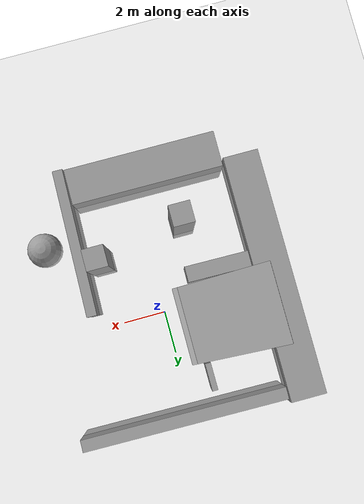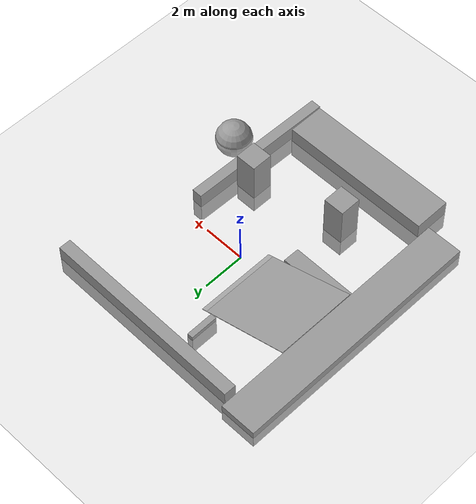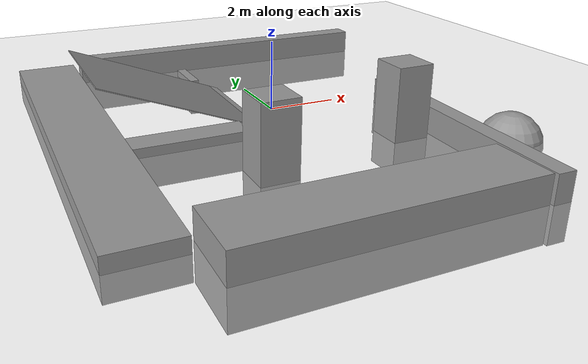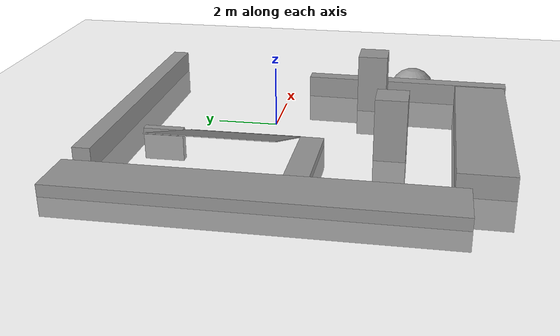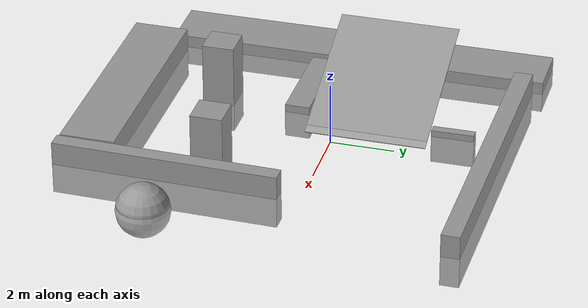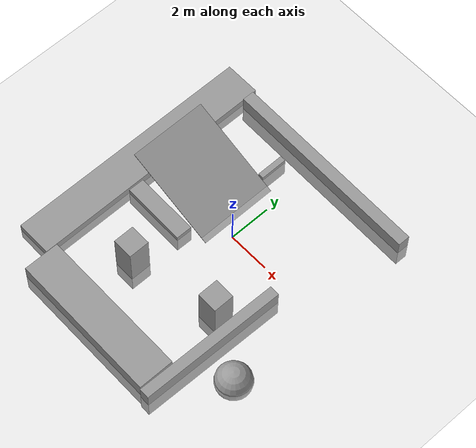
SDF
<?xml version="1.0" ?>
<sdf version="1.6">
  <world name="default">

    <!-- Lighting -->
    <light name="sun" type="directional">
      <cast_shadows>1</cast_shadows>
      <pose>0 0 10 0 -0 0</pose>
      <diffuse>0.8 0.8 0.8 1</diffuse>
      <specular>0.2 0.2 0.2 1</specular>
      <attenuation>
        <range>1000</range>
        <constant>0.9</constant>
        <linear>0.01</linear>
        <quadratic>0.001</quadratic>
      </attenuation>
      <direction>-0.5 0.1 -0.9</direction>
    </light>

    <!-- Ground plane -->
    <model name="ground_plane">
      <static>1</static>
      <link name="link">
        <collision name="collision">
          <geometry>
            <plane>
              <normal>0 0 1</normal>
              <size>100 100</size>
            </plane>
          </geometry>
          <surface>
            <contact>
              <collide_bitmask>65535</collide_bitmask>
              <ode/>
            </contact>
            <friction>
              <ode>
                <mu>100</mu>
                <mu2>50</mu2>
              </ode>
            </friction>
          </surface>
        </collision>
        <visual name="visual">
          <cast_shadows>0</cast_shadows>
          <geometry>
            <plane>
              <normal>0 0 1</normal>
              <size>100 100</size>
            </plane>
          </geometry>
          <material>
            <script>
              <uri>file://media/materials/scripts/gazebo.material</uri>
              <name>Gazebo/Grey</name>
            </script>
          </material>
        </visual>
      </link>
    </model>

    <!-- Physics parameters -->
    <physics type="ode">
      <max_step_size>0.001</max_step_size>
      <real_time_factor>1</real_time_factor>
      <real_time_update_rate>1000</real_time_update_rate>
    </physics>

    <!-- Scene settings -->
    <scene>
      <ambient>0.4 0.4 0.4 1</ambient>
      <background>0.7 0.7 0.7 1</background>
      <shadows>1</shadows>
    </scene>

    <!-- Environment -->
    <gravity>0 0 -9.8</gravity>
    <magnetic_field>6e-06 2.3e-05 -4.2e-05</magnetic_field>
    <atmosphere type="adiabatic"/>
    <wind/>
    <spherical_coordinates>
      <surface_model>EARTH_WGS84</surface_model>
      <latitude_deg>0</latitude_deg>
      <longitude_deg>0</longitude_deg>
      <elevation>0</elevation>
      <heading_deg>0</heading_deg>
    </spherical_coordinates>

    <!-- Your rampsmall model -->
    <model name='rampsmall'>
      <link name='link_0'>
        <inertial>
          <mass>3.57056e+06</mass>
          <inertia>
            <ixx>4.41918e+07</ixx>
            <ixy>0</ixy>
            <ixz>0</ixz>
            <iyy>1.76113e+06</iyy>
            <iyz>0</iyz>
            <izz>4.41966e+07</izz>
          </inertia>
          <pose>0 0 0 0 -0 0</pose>
        </inertial>
        <pose>-5.48954 -0.381079 -0.132793 0 -0 0</pose>
        <gravity>1</gravity>
        <self_collide>0</self_collide>
        <kinematic>0</kinematic>
        <enable_wind>0</enable_wind>
        <visual name='visual'>
          <pose>0 0 0 0 -0 0</pose>
          <geometry>
            <box>
              <size>1.72264 12.0652 1.01795</size>
            </box>
          </geometry>
          <material>
            <lighting>1</lighting>
            <script>
              <uri>file://media/materials/scripts/gazebo.material</uri>
              <name>Gazebo/Grey</name>
            </script>
            <shader type='pixel'>
              <normal_map>__default__</normal_map>
            </shader>
          </material>
          <transparency>0</transparency>
          <cast_shadows>1</cast_shadows>
        </visual>
        <collision name='collision'>
          <laser_retro>0</laser_retro>
          <max_contacts>10</max_contacts>
          <pose>0 0 0 0 -0 0</pose>
          <geometry>
            <box>
              <size>1.72264 12.0652 1.01795</size>
            </box>
          </geometry>
          <surface>
            <friction>
              <ode>
                <mu>1</mu>
                <mu2>1</mu2>
                <fdir1>0 0 0</fdir1>
                <slip1>0</slip1>
                <slip2>0</slip2>
              </ode>
              <torsional>
                <coefficient>1</coefficient>
                <patch_radius>0</patch_radius>
                <surface_radius>0</surface_radius>
                <use_patch_radius>1</use_patch_radius>
                <ode>
                  <slip>0</slip>
                </ode>
              </torsional>
            </friction>
            <bounce>
              <restitution_coefficient>0</restitution_coefficient>
              <threshold>1e+06</threshold>
            </bounce>
            <contact>
              <collide_without_contact>0</collide_without_contact>
              <collide_without_contact_bitmask>1</collide_without_contact_bitmask>
              <collide_bitmask>1</collide_bitmask>
              <ode>
                <soft_cfm>0</soft_cfm>
                <soft_erp>0.2</soft_erp>
                <kp>1e+13</kp>
                <kd>1</kd>
                <max_vel>0.01</max_vel>
                <min_depth>0</min_depth>
              </ode>
              <bullet>
                <split_impulse>1</split_impulse>
                <split_impulse_penetration_threshold>-0.01</split_impulse_penetration_threshold>
                <soft_cfm>0</soft_cfm>
                <soft_erp>0.2</soft_erp>
                <kp>1e+13</kp>
                <kd>1</kd>
              </bullet>
            </contact>
          </surface>
        </collision>
      </link>
      <link name='link_0_1'>
        <inertial>
          <mass>2.89336e+06</mass>
          <inertia>
            <ixx>2.2596e+06</ixx>
            <ixy>0</ixy>
            <ixz>0</ixz>
            <iyy>2.2596e+06</iyy>
            <iyz>0</iyz>
            <izz>482227</izz>
          </inertia>
          <pose>0 0 0 0 -0 0</pose>
        </inertial>
        <pose>-1.87261 -3.97972 0.534001 0 -0 0</pose>
        <gravity>1</gravity>
        <self_collide>0</self_collide>
        <kinematic>0</kinematic>
        <enable_wind>0</enable_wind>
        <visual name='visual'>
          <pose>0 0 0 0 -0 0</pose>
          <geometry>
            <box>
              <size>1 1 2.89336</size>
            </box>
          </geometry>
          <material>
            <lighting>1</lighting>
            <script>
              <uri>file://media/materials/scripts/gazebo.material</uri>
              <name>Gazebo/Grey</name>
            </script>
            <shader type='pixel'>
              <normal_map>__default__</normal_map>
            </shader>
          </material>
          <transparency>0</transparency>
          <cast_shadows>1</cast_shadows>
        </visual>
        <collision name='collision'>
          <laser_retro>0</laser_retro>
          <max_contacts>10</max_contacts>
          <pose>0 0 0 0 -0 0</pose>
          <geometry>
            <box>
              <size>1 1 2.89336</size>
            </box>
          </geometry>
          <surface>
            <friction>
              <ode>
                <mu>1</mu>
                <mu2>1</mu2>
                <fdir1>0 0 0</fdir1>
                <slip1>0</slip1>
                <slip2>0</slip2>
              </ode>
              <torsional>
                <coefficient>1</coefficient>
                <patch_radius>0</patch_radius>
                <surface_radius>0</surface_radius>
                <use_patch_radius>1</use_patch_radius>
                <ode>
                  <slip>0</slip>
                </ode>
              </torsional>
            </friction>
            <bounce>
              <restitution_coefficient>0</restitution_coefficient>
              <threshold>1e+06</threshold>
            </bounce>
            <contact>
              <collide_without_contact>0</collide_without_contact>
              <collide_without_contact_bitmask>1</collide_without_contact_bitmask>
              <collide_bitmask>1</collide_bitmask>
              <ode>
                <soft_cfm>0</soft_cfm>
                <soft_erp>0.2</soft_erp>
                <kp>1e+13</kp>
                <kd>1</kd>
                <max_vel>0.01</max_vel>
                <min_depth>0</min_depth>
              </ode>
              <bullet>
                <split_impulse>1</split_impulse>
                <split_impulse_penetration_threshold>-0.01</split_impulse_penetration_threshold>
                <soft_cfm>0</soft_cfm>
                <soft_erp>0.2</soft_erp>
                <kp>1e+13</kp>
                <kd>1</kd>
              </bullet>
            </contact>
          </surface>
        </collision>
      </link>
      <link name='link_0_1_clone'>
        <inertial>
          <mass>780854</mass>
          <inertia>
            <ixx>949630</ixx>
            <ixy>0</ixy>
            <ixz>0</ixz>
            <iyy>1.53383e+06</iyy>
            <iyz>0</iyz>
            <izz>2.48323e+06</izz>
          </inertia>
          <pose>0 0 0 0 -0 0</pose>
        </inertial>
        <pose>-2.88209 0.917359 0.745586 0 0.369399 0</pose>
        <gravity>1</gravity>
        <self_collide>1</self_collide>
        <kinematic>0</kinematic>
        <enable_wind>0</enable_wind>
        <visual name='visual'>
          <pose>0 0 0 0 -0 0</pose>
          <geometry>
            <box>
              <size>4.85487 3.81994 0.02678</size>
            </box>
          </geometry>
          <material>
            <lighting>1</lighting>
            <script>
              <uri>file://media/materials/scripts/gazebo.material</uri>
              <name>Gazebo/Grey</name>
            </script>
            <shader type='pixel'>
              <normal_map>__default__</normal_map>
            </shader>
            <ambient>0.3 0.3 0.3 1</ambient>
            <diffuse>0.7 0.7 0.7 1</diffuse>
            <specular>0.01 0.01 0.01 1</specular>
            <emissive>0 0 0 1</emissive>
          </material>
          <transparency>0</transparency>
          <cast_shadows>1</cast_shadows>
        </visual>
        <collision name='collision'>
          <laser_retro>0</laser_retro>
          <max_contacts>10</max_contacts>
          <pose>0 0 0 0 -0 0</pose>
          <geometry>
            <box>
              <size>4.85487 3.81994 0.026078</size>
            </box>
          </geometry>
          <surface>
            <friction>
              <ode>
                <mu>1</mu>
                <mu2>1</mu2>
                <fdir1>0 0 0</fdir1>
                <slip1>0</slip1>
                <slip2>0</slip2>
              </ode>
              <torsional>
                <coefficient>1</coefficient>
                <patch_radius>0</patch_radius>
                <surface_radius>0</surface_radius>
                <use_patch_radius>1</use_patch_radius>
                <ode>
                  <slip>0</slip>
                </ode>
              </torsional>
            </friction>
            <bounce>
              <restitution_coefficient>0</restitution_coefficient>
              <threshold>1e+06</threshold>
            </bounce>
            <contact>
              <collide_without_contact>0</collide_without_contact>
              <collide_without_contact_bitmask>1</collide_without_contact_bitmask>
              <collide_bitmask>1</collide_bitmask>
              <ode>
                <soft_cfm>0</soft_cfm>
                <soft_erp>0.2</soft_erp>
                <kp>1e+13</kp>
                <kd>1</kd>
                <max_vel>0.01</max_vel>
                <min_depth>0</min_depth>
              </ode>
              <bullet>
                <split_impulse>1</split_impulse>
                <split_impulse_penetration_threshold>-0.01</split_impulse_penetration_threshold>
                <soft_cfm>0</soft_cfm>
                <soft_erp>0.2</soft_erp>
                <kp>1e+13</kp>
                <kd>1</kd>
              </bullet>
            </contact>
          </surface>
        </collision>
      </link>
      <link name='link_0_1_clone_0'>
        <inertial>
          <mass>2.89336e+06</mass>
          <inertia>
            <ixx>2.2596e+06</ixx>
            <ixy>0</ixy>
            <ixz>0</ixz>
            <iyy>2.2596e+06</iyy>
            <iyz>0</iyz>
            <izz>482227</izz>
          </inertia>
          <pose>0 0 0 0 -0 0</pose>
        </inertial>
        <pose>2.31457 -3.08211 0.534005 0 -2e-06 -1.4e-05</pose>
        <gravity>1</gravity>
        <self_collide>0</self_collide>
        <kinematic>0</kinematic>
        <enable_wind>0</enable_wind>
        <visual name='visual'>
          <pose>0 0 0 0 -0 0</pose>
          <geometry>
            <box>
              <size>1 1 2.89336</size>
            </box>
          </geometry>
          <material>
            <lighting>1</lighting>
            <script>
              <uri>file://media/materials/scripts/gazebo.material</uri>
              <name>Gazebo/Grey</name>
            </script>
            <shader type='pixel'>
              <normal_map>__default__</normal_map>
            </shader>
          </material>
          <transparency>0</transparency>
          <cast_shadows>1</cast_shadows>
        </visual>
        <collision name='collision'>
          <laser_retro>0</laser_retro>
          <max_contacts>10</max_contacts>
          <pose>0 0 0 0 -0 0</pose>
          <geometry>
            <box>
              <size>1 1 2.89336</size>
            </box>
          </geometry>
          <surface>
            <friction>
              <ode>
                <mu>1</mu>
                <mu2>1</mu2>
                <fdir1>0 0 0</fdir1>
                <slip1>0</slip1>
                <slip2>0</slip2>
              </ode>
              <torsional>
                <coefficient>1</coefficient>
                <patch_radius>0</patch_radius>
                <surface_radius>0</surface_radius>
                <use_patch_radius>1</use_patch_radius>
                <ode>
                  <slip>0</slip>
                </ode>
              </torsional>
            </friction>
            <bounce>
              <restitution_coefficient>0</restitution_coefficient>
              <threshold>1e+06</threshold>
            </bounce>
            <contact>
              <collide_without_contact>0</collide_without_contact>
              <collide_without_contact_bitmask>1</collide_without_contact_bitmask>
              <collide_bitmask>1</collide_bitmask>
              <ode>
                <soft_cfm>0</soft_cfm>
                <soft_erp>0.2</soft_erp>
                <kp>1e+13</kp>
                <kd>1</kd>
                <max_vel>0.01</max_vel>
                <min_depth>0</min_depth>
              </ode>
              <bullet>
                <split_impulse>1</split_impulse>
                <split_impulse_penetration_threshold>-0.01</split_impulse_penetration_threshold>
                <soft_cfm>0</soft_cfm>
                <soft_erp>0.2</soft_erp>
                <kp>1e+13</kp>
                <kd>1</kd>
              </bullet>
            </contact>
          </surface>
        </collision>
      </link>
      <link name='link_0_clone'>
        <inertial>
          <mass>968465</mass>
          <inertia>
            <ixx>7.9501e+06</ixx>
            <ixy>0</ixy>
            <ixz>0</ixz>
            <iyy>265030</iyy>
            <iyz>0</iyz>
            <izz>7.73875e+06</izz>
          </inertia>
          <pose>0 0 0 0 -0 0</pose>
        </inertial>
        <pose>0.387714 5.00707 -0.132798 -0 -0 -1.58252</pose>
        <gravity>1</gravity>
        <self_collide>0</self_collide>
        <kinematic>0</kinematic>
        <enable_wind>0</enable_wind>
        <visual name='visual'>
          <pose>0 0 0 0 -0 0</pose>
          <geometry>
            <box>
              <size>0.576687 9.77529 1.71795</size>
            </box>
          </geometry>
          <material>
            <lighting>1</lighting>
            <script>
              <uri>file://media/materials/scripts/gazebo.material</uri>
              <name>Gazebo/Grey</name>
            </script>
            <shader type='pixel'>
              <normal_map>__default__</normal_map>
            </shader>
          </material>
          <transparency>0</transparency>
          <cast_shadows>1</cast_shadows>
        </visual>
        <collision name='collision'>
          <laser_retro>0</laser_retro>
          <max_contacts>10</max_contacts>
          <pose>0 0 0 0 -0 0</pose>
          <geometry>
            <box>
              <size>0.576687 9.77529 1.71795</size>
            </box>
          </geometry>
          <surface>
            <friction>
              <ode>
                <mu>1</mu>
                <mu2>1</mu2>
                <fdir1>0 0 0</fdir1>
                <slip1>0</slip1>
                <slip2>0</slip2>
              </ode>
              <torsional>
                <coefficient>1</coefficient>
                <patch_radius>0</patch_radius>
                <surface_radius>0</surface_radius>
                <use_patch_radius>1</use_patch_radius>
                <ode>
                  <slip>0</slip>
                </ode>
              </torsional>
            </friction>
            <bounce>
              <restitution_coefficient>0</restitution_coefficient>
              <threshold>1e+06</threshold>
            </bounce>
            <contact>
              <collide_without_contact>0</collide_without_contact>
              <collide_without_contact_bitmask>1</collide_without_contact_bitmask>
              <collide_bitmask>1</collide_bitmask>
              <ode>
                <soft_cfm>0</soft_cfm>
                <soft_erp>0.2</soft_erp>
                <kp>1e+13</kp>
                <kd>1</kd>
                <max_vel>0.01</max_vel>
                <min_depth>0</min_depth>
              </ode>
              <bullet>
                <split_impulse>1</split_impulse>
                <split_impulse_penetration_threshold>-0.01</split_impulse_penetration_threshold>
                <soft_cfm>0</soft_cfm>
                <soft_erp>0.2</soft_erp>
                <kp>1e+13</kp>
                <kd>1</kd>
              </bullet>
            </contact>
          </surface>
        </collision>
      </link>
      <link name='link_0_clone_0'>
        <inertial>
          <mass>595703</mass>
          <inertia>
            <ixx>2.63348e+06</ixx>
            <ixy>0</ixy>
            <ixz>0</ixz>
            <iyy>158425</iyy>
            <iyz>0</iyz>
            <izz>2.49888e+06</izz>
          </inertia>
          <pose>0 0 0 0 -0 0</pose>
        </inertial>
        <pose>3.23945 -4.22974 -0.132793 0 -0 -0.021388</pose>
        <gravity>1</gravity>
        <self_collide>0</self_collide>
        <kinematic>0</kinematic>
        <enable_wind>0</enable_wind>
        <visual name='visual'>
          <pose>0 0 0 0 -0 0</pose>
          <geometry>
            <box>
              <size>0.489911 7.07801 1.71795</size>
            </box>
          </geometry>
          <material>
            <lighting>1</lighting>
            <script>
              <uri>file://media/materials/scripts/gazebo.material</uri>
              <name>Gazebo/Grey</name>
            </script>
            <shader type='pixel'>
              <normal_map>__default__</normal_map>
            </shader>
          </material>
          <transparency>0</transparency>
          <cast_shadows>1</cast_shadows>
        </visual>
        <collision name='collision'>
          <laser_retro>0</laser_retro>
          <max_contacts>10</max_contacts>
          <pose>0 0 0 0 -0 0</pose>
          <geometry>
            <box>
              <size>0.489911 7.07801 1.71795</size>
            </box>
          </geometry>
          <surface>
            <friction>
              <ode>
                <mu>1</mu>
                <mu2>1</mu2>
                <fdir1>0 0 0</fdir1>
                <slip1>0</slip1>
                <slip2>0</slip2>
              </ode>
              <torsional>
                <coefficient>1</coefficient>
                <patch_radius>0</patch_radius>
                <surface_radius>0</surface_radius>
                <use_patch_radius>1</use_patch_radius>
                <ode>
                  <slip>0</slip>
                </ode>
              </torsional>
            </friction>
            <bounce>
              <restitution_coefficient>0</restitution_coefficient>
              <threshold>1e+06</threshold>
            </bounce>
            <contact>
              <collide_without_contact>0</collide_without_contact>
              <collide_without_contact_bitmask>1</collide_without_contact_bitmask>
              <collide_bitmask>1</collide_bitmask>
              <ode>
                <soft_cfm>0</soft_cfm>
                <soft_erp>0.2</soft_erp>
                <kp>1e+13</kp>
                <kd>1</kd>
                <max_vel>0.01</max_vel>
                <min_depth>0</min_depth>
              </ode>
              <bullet>
                <split_impulse>1</split_impulse>
                <split_impulse_penetration_threshold>-0.01</split_impulse_penetration_threshold>
                <soft_cfm>0</soft_cfm>
                <soft_erp>0.2</soft_erp>
                <kp>1e+13</kp>
                <kd>1</kd>
              </bullet>
            </contact>
          </surface>
        </collision>
      </link>
      <link name='link_0_clone_clone'>
        <inertial>
          <mass>2.16662e+06</mass>
          <inertia>
            <ixx>1.02104e+07</ixx>
            <ixy>0</ixy>
            <ixz>0</ixz>
            <iyy>1.06866e+06</iyy>
            <iyz>0</iyz>
            <izz>1.02133e+07</izz>
          </inertia>
          <pose>0 0 0 0 -0 0</pose>
        </inertial>
        <pose>-0.789595 -6.82638 -0.132793 -0 -0 -1.57429</pose>
        <gravity>1</gravity>
        <self_collide>0</self_collide>
        <kinematic>0</kinematic>
        <enable_wind>0</enable_wind>
        <visual name='visual'>
          <pose>0 0 0 0 -0 0</pose>
          <geometry>
            <box>
              <size>1.72264 7.32119 1.71795</size>
            </box>
          </geometry>
          <material>
            <lighting>1</lighting>
            <script>
              <uri>file://media/materials/scripts/gazebo.material</uri>
              <name>Gazebo/Grey</name>
            </script>
            <shader type='pixel'>
              <normal_map>__default__</normal_map>
            </shader>
          </material>
          <transparency>0</transparency>
          <cast_shadows>1</cast_shadows>
        </visual>
        <collision name='collision'>
          <laser_retro>0</laser_retro>
          <max_contacts>10</max_contacts>
          <pose>0 0 0 0 -0 0</pose>
          <geometry>
            <box>
              <size>1.72264 7.32119 1.71795</size>
            </box>
          </geometry>
          <surface>
            <friction>
              <ode>
                <mu>1</mu>
                <mu2>1</mu2>
                <fdir1>0 0 0</fdir1>
                <slip1>0</slip1>
                <slip2>0</slip2>
              </ode>
              <torsional>
                <coefficient>1</coefficient>
                <patch_radius>0</patch_radius>
                <surface_radius>0</surface_radius>
                <use_patch_radius>1</use_patch_radius>
                <ode>
                  <slip>0</slip>
                </ode>
              </torsional>
            </friction>
            <bounce>
              <restitution_coefficient>0</restitution_coefficient>
              <threshold>1e+06</threshold>
            </bounce>
            <contact>
              <collide_without_contact>0</collide_without_contact>
              <collide_without_contact_bitmask>1</collide_without_contact_bitmask>
              <collide_bitmask>1</collide_bitmask>
              <ode>
                <soft_cfm>0</soft_cfm>
                <soft_erp>0.2</soft_erp>
                <kp>1e+13</kp>
                <kd>1</kd>
                <max_vel>0.01</max_vel>
                <min_depth>0</min_depth>
              </ode>
              <bullet>
                <split_impulse>1</split_impulse>
                <split_impulse_penetration_threshold>-0.01</split_impulse_penetration_threshold>
                <soft_cfm>0</soft_cfm>
                <soft_erp>0.2</soft_erp>
                <kp>1e+13</kp>
                <kd>1</kd>
              </bullet>
            </contact>
          </surface>
        </collision>
      </link>
      <link name='link_0_clone_clone_0'>
        <inertial>
          <mass>96035.1</mass>
          <inertia>
            <ixx>88774.4</ixx>
            <ixy>0</ixy>
            <ixz>0</ixz>
            <iyy>10364.4</iyy>
            <iyz>0</iyz>
            <izz>79636.5</izz>
          </inertia>
          <pose>0 0 0 0 -0 0</pose>
        </inertial>
        <pose>-3.03422 -1.43636 -0.31194 2e-06 -0 -1.58253</pose>
        <gravity>1</gravity>
        <self_collide>0</self_collide>
        <kinematic>0</kinematic>
        <enable_wind>0</enable_wind>
        <visual name='visual'>
          <pose>0 0 0 0 -0 0</pose>
          <geometry>
            <box>
              <size>0.776822 3.14234 1.10383</size>
            </box>
          </geometry>
          <material>
            <lighting>1</lighting>
            <script>
              <uri>file://media/materials/scripts/gazebo.material</uri>
              <name>Gazebo/Grey</name>
            </script>
            <shader type='pixel'>
              <normal_map>__default__</normal_map>
            </shader>
          </material>
          <transparency>0</transparency>
          <cast_shadows>1</cast_shadows>
        </visual>
        <collision name='collision'>
          <laser_retro>0</laser_retro>
          <max_contacts>10</max_contacts>
          <pose>0 0 0 0 -0 0</pose>
          <geometry>
            <box>
              <size>0.776822 3.14234 1.10383</size>
            </box>
          </geometry>
          <surface>
            <friction>
              <ode>
                <mu>1</mu>
                <mu2>1</mu2>
                <fdir1>0 0 0</fdir1>
                <slip1>0</slip1>
                <slip2>0</slip2>
              </ode>
              <torsional>
                <coefficient>1</coefficient>
                <patch_radius>0</patch_radius>
                <surface_radius>0</surface_radius>
                <use_patch_radius>1</use_patch_radius>
                <ode>
                  <slip>0</slip>
                </ode>
              </torsional>
            </friction>
            <bounce>
              <restitution_coefficient>0</restitution_coefficient>
              <threshold>1e+06</threshold>
            </bounce>
            <contact>
              <collide_without_contact>0</collide_without_contact>
              <collide_without_contact_bitmask>1</collide_without_contact_bitmask>
              <collide_bitmask>1</collide_bitmask>
              <ode>
                <soft_cfm>0</soft_cfm>
                <soft_erp>0.2</soft_erp>
                <kp>1e+13</kp>
                <kd>1</kd>
                <max_vel>0.01</max_vel>
                <min_depth>0</min_depth>
              </ode>
              <bullet>
                <split_impulse>1</split_impulse>
                <split_impulse_penetration_threshold>-0.01</split_impulse_penetration_threshold>
                <soft_cfm>0</soft_cfm>
                <soft_erp>0.2</soft_erp>
                <kp>1e+13</kp>
                <kd>1</kd>
              </bullet>
            </contact>
          </surface>
        </collision>
      </link>
      <link name='link_0_clone_clone_0_clone'>
        <inertial>
          <mass>40821.4</mass>
          <inertia>
            <ixx>10214.1</ixx>
            <ixy>0</ixy>
            <ixz>0</ixz>
            <iyy>4405.55</iyy>
            <iyz>0</iyz>
            <izz>6329.89</izz>
          </inertia>
          <pose>0 0 0 0 -0 0</pose>
        </inertial>
        <pose>-1.33909 3.5441 -0.35526 0 -4e-06 0.004905</pose>
        <gravity>1</gravity>
        <self_collide>0</self_collide>
        <kinematic>0</kinematic>
        <enable_wind>0</enable_wind>
        <visual name='visual'>
          <pose>0 0 0 0 -0 0</pose>
          <geometry>
            <box>
              <size>0.276822 1.33571 1.10383</size>
            </box>
          </geometry>
          <material>
            <lighting>1</lighting>
            <script>
              <uri>file://media/materials/scripts/gazebo.material</uri>
              <name>Gazebo/Grey</name>
            </script>
            <shader type='pixel'>
              <normal_map>__default__</normal_map>
            </shader>
          </material>
          <transparency>0</transparency>
          <cast_shadows>1</cast_shadows>
        </visual>
        <collision name='collision'>
          <laser_retro>0</laser_retro>
          <max_contacts>10</max_contacts>
          <pose>0 0 0 0 -0 0</pose>
          <geometry>
            <box>
              <size>0.276822 1.33571 1.10383</size>
            </box>
          </geometry>
          <surface>
            <friction>
              <ode>
                <mu>1</mu>
                <mu2>1</mu2>
                <fdir1>0 0 0</fdir1>
                <slip1>0</slip1>
                <slip2>0</slip2>
              </ode>
              <torsional>
                <coefficient>1</coefficient>
                <patch_radius>0</patch_radius>
                <surface_radius>0</surface_radius>
                <use_patch_radius>1</use_patch_radius>
                <ode>
                  <slip>0</slip>
                </ode>
              </torsional>
            </friction>
            <bounce>
              <restitution_coefficient>0</restitution_coefficient>
              <threshold>1e+06</threshold>
            </bounce>
            <contact>
              <collide_without_contact>0</collide_without_contact>
              <collide_without_contact_bitmask>1</collide_without_contact_bitmask>
              <collide_bitmask>1</collide_bitmask>
              <ode>
                <soft_cfm>0</soft_cfm>
                <soft_erp>0.2</soft_erp>
                <kp>1e+13</kp>
                <kd>1</kd>
                <max_vel>0.01</max_vel>
                <min_depth>0</min_depth>
              </ode>
              <bullet>
                <split_impulse>1</split_impulse>
                <split_impulse_penetration_threshold>-0.01</split_impulse_penetration_threshold>
                <soft_cfm>0</soft_cfm>
                <soft_erp>0.2</soft_erp>
                <kp>1e+13</kp>
                <kd>1</kd>
              </bullet>
            </contact>
          </surface>
        </collision>
      </link>
      <link name='link_1'>
        <inertial>
          <mass>245969</mass>
          <inertia>
            <ixx>68992.1</ixx>
            <ixy>0</ixy>
            <ixz>0</ixz>
            <iyy>68992.1</iyy>
            <iyz>0</iyz>
            <izz>68992.1</izz>
          </inertia>
          <pose>0 0 0 0 -0 0</pose>
        </inertial>
        <pose>4.87263 -4.41848 -0.192004 0 -0 0</pose>
        <gravity>1</gravity>
        <self_collide>0</self_collide>
        <kinematic>0</kinematic>
        <enable_wind>0</enable_wind>
        <visual name='visual'>
          <pose>0 0 0 0 -0 0</pose>
          <geometry>
            <sphere>
              <radius>0.837393</radius>
            </sphere>
          </geometry>
          <material>
            <lighting>1</lighting>
            <script>
              <uri>file://media/materials/scripts/gazebo.material</uri>
              <name>Gazebo/Grey</name>
            </script>
            <shader type='pixel'>
              <normal_map>__default__</normal_map>
            </shader>
          </material>
          <transparency>0</transparency>
          <cast_shadows>1</cast_shadows>
        </visual>
        <collision name='collision'>
          <laser_retro>0</laser_retro>
          <max_contacts>10</max_contacts>
          <pose>0 0 0 0 -0 0</pose>
          <geometry>
            <sphere>
              <radius>0.837393</radius>
            </sphere>
          </geometry>
          <surface>
            <friction>
              <ode>
                <mu>1</mu>
                <mu2>1</mu2>
                <fdir1>0 0 0</fdir1>
                <slip1>0</slip1>
                <slip2>0</slip2>
              </ode>
              <torsional>
                <coefficient>1</coefficient>
                <patch_radius>0</patch_radius>
                <surface_radius>0</surface_radius>
                <use_patch_radius>1</use_patch_radius>
                <ode>
                  <slip>0</slip>
                </ode>
              </torsional>
            </friction>
            <bounce>
              <restitution_coefficient>0</restitution_coefficient>
              <threshold>1e+06</threshold>
            </bounce>
            <contact>
              <collide_without_contact>0</collide_without_contact>
              <collide_without_contact_bitmask>1</collide_without_contact_bitmask>
              <collide_bitmask>1</collide_bitmask>
              <ode>
                <soft_cfm>0</soft_cfm>
                <soft_erp>0.2</soft_erp>
                <kp>1e+13</kp>
                <kd>1</kd>
                <max_vel>0.01</max_vel>
                <min_depth>0</min_depth>
              </ode>
              <bullet>
                <split_impulse>1</split_impulse>
                <split_impulse_penetration_threshold>-0.01</split_impulse_penetration_threshold>
                <soft_cfm>0</soft_cfm>
                <soft_erp>0.2</soft_erp>
                <kp>1e+13</kp>
                <kd>1</kd>
              </bullet>
            </contact>
          </surface>
        </collision>
      </link>
      <static>0</static>
      <allow_auto_disable>1</allow_auto_disable>
    </model>

  </world>
</sdf>
